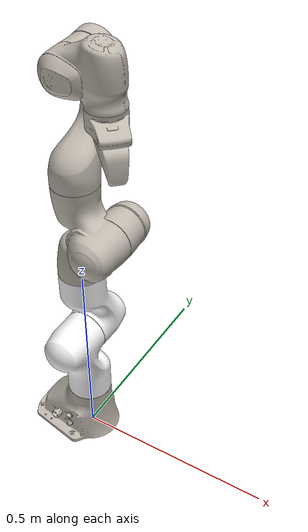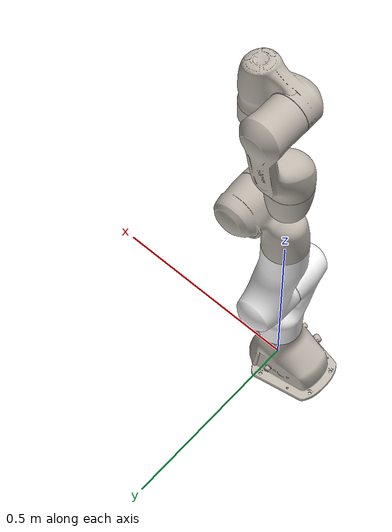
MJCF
<mujoco>
  <compiler angle="radian" meshdir="./mesh" texturedir="./texture" />
  <asset>
    <mesh name="link0" file="link0.obj" />
    <mesh name="link1" file="link1.obj" />
    <mesh name="link2" file="link2.obj" />
    <mesh name="link3" file="link3.obj" />
    <mesh name="link4" file="link4.obj" />
    <mesh name="link5" file="link5.obj" />
    <mesh name="link6" file="link6.obj" />
    <mesh name="link7" file="link7.obj" />
    <mesh name="hand" file="hand.obj" />
    <texture name="panda" file="panda.png" type="2d" />
    <material name="panda" texture="panda" shininess=".4" specular=".4" />
    <material name="panda_white" rgba="1 1 1 1" shininess="0.4" specular="0.4" />
  </asset>
  <default>
    <velocity kv="10" ctrllimited="true" ctrlrange="-3.1415928 3.1415928" forcelimited='true'/>
    <geom solref="0.002 1" solimp="0.95 0.99 0.001" conaffinity="1" friction="1.0 0.1 0.001" contype="1" condim="6" />
  </default>
  <worldbody>
    <body name="panda_link0">
      <site name="base_site" />
      <geom type="mesh" material="panda" mesh="link0" />
      <inertial pos="-4.1018e-02 -1.4e-04 4.9974e-02" mass="6.29769e-01" fullinertia="3.15e-03 3.88e-03 4.285e-03 8.2904e-07 1.5e-04 8.2299e-06" />
      <body name="panda_link1" pos="0 0 0.333">
        <inertial pos="3.875e-03 2.081e-03 -4.762e-02" mass="4.970684" fullinertia="7.0337e-01 7.0661e-01 9.1170e-03 -1.3900e-04 6.7720e-03 1.9169e-02" />
        <joint name="panda_joint1" pos="0 0 0" axis="0 0 1" limited="true" range="-2.8973 2.8973" damping="0.0665" frictionloss="0.2450" />
        <geom type="mesh" material="panda_white" mesh="link1" />
        <body name="panda_link2" pos="0 0 0" quat="0.707107 -0.707107 0 0">
          <inertial pos="-3.141e-03 -2.872e-02 3.495e-03" mass="0.646926" fullinertia="7.9620e-03 2.8110e-02 2.5995e-02 -3.9250e-03 1.0254e-02 7.0400e-04" />
          <joint name="panda_joint2" pos="0 0 0" axis="0 0 1" limited="true" range="-1.7628 1.7628" damping="0.1987" frictionloss="0.1523" />
          <geom type="mesh" material="panda_white" mesh="link2" />
          <body name="panda_link3" pos="0 -0.316 0" quat="0.707107 0.707107 0 0">
            <inertial pos="2.7518e-02 3.9252e-02 -6.6502e-02" mass="3.228604" fullinertia="3.7242e-02 3.6155e-02 1.0830e-02 -4.7610e-03 -1.1396e-02 -1.2805e-02" />
            <joint name="panda_joint3" pos="0 0 0" axis="0 0 1" limited="true" range="-2.8973 2.8973" damping="0.0399" frictionloss="0.1827" />
            <geom type="mesh" material="panda" mesh="link3" />
            <body name="panda_link4" pos="0.0825 0 0" quat="0.707107 0.707107 0 0">
              <inertial pos="-5.317e-02 1.04419e-01 2.7454e-02" mass="3.587895" fullinertia="2.5853e-02 1.9552e-02 2.8323e-02 7.7960e-03 -1.3320e-03 8.6410e-03" />
              <joint name="panda_joint4" pos="0 0 0" axis="0 0 1" limited="true" range="-3.0718 -0.0698" damping="0.2257" frictionloss="0.3591" />
              <geom type="mesh" material="panda" mesh="link4" />
              <body name="panda_link5" pos="-0.0825 0.384 0" quat="0.707107 -0.707107 0 0">
                <inertial pos="1.1953e-02 4.1065e-02 -3.8437e-02" mass="1.225946" fullinertia="3.5549e-02 2.9474e-02 8.6270e-03 -2.1170e-03 -4.0370e-03 2.2900e-04" />
                <joint name="panda_joint5" pos="0 0 0" axis="0 0 1" limited="true" range="-2.8973 2.8973" damping="0.1023" frictionloss="0.2669" />
                <geom type="mesh" material="panda" mesh="link5" />
                <body name="panda_link6" pos="0 0 0" quat="0.707107 0.707107 0 0">
                  <inertial pos="6.0149e-02 -1.4117e-02 -1.0517e-02" mass="1.666555 " fullinertia="1.9640e-03 4.3540e-03 5.4330e-03 1.0900e-04 -1.1580e-03 3.4100e-04" />
                  <joint name="panda_joint6" pos="0 0 0" axis="0 0 1" limited="true" range="-0.0175 3.7525" damping="-0.0132" frictionloss="0.1658" />
                  <geom type="mesh" material="panda" mesh="link6" />
                  <body name="panda_link7" pos="0.088 0 0" quat="0.707107 0.707107 0 0">
                    <inertial pos="1.0517e-02 -4.252e-03 6.1597e-02" mass="7.35522e-01" fullinertia="1.2516e-02 1.0027e-02 4.8150e-03 -4.2800e-04 -1.1960e-03 -7.4100e-04" />
                    <joint name="panda_joint7" pos="0 0 0" axis="0 0 1" limited="true" range="-2.8973 2.8973" damping="0.0638" frictionloss="1.2109" />
                    <geom type="mesh" material="panda" mesh="link7" />
                    <body name="panda_link8" pos="0 0 0.107">
                      <body name="panda_hand" euler="0 0 -0.785398163397">
                        <inertial pos="-1e-02 0 3e-02" mass="7.3e-01" diaginertia="1e-03 2.5e-03 1.7e-03" />
                        <geom type="mesh" material="panda" mesh="hand" />
                        <site name="wrist_site"/>
                      </body>
                    </body>
                  </body>
                </body>
              </body>
            </body>
          </body>
        </body>
      </body>
    </body>
  </worldbody>
  <actuator>
    <velocity forcerange="-87 87" joint="panda_joint1" name="panda_joint1" />
    <velocity forcerange="-87 87" joint="panda_joint2" name="panda_joint2" />
    <velocity forcerange="-87 87" joint="panda_joint3" name="panda_joint3" />
    <velocity forcerange="-87 87" joint="panda_joint4" name="panda_joint4" />
    <velocity forcerange="-12 12" joint="panda_joint5" name="panda_joint5" />
    <velocity forcerange="-12 12" joint="panda_joint6" name="panda_joint6" />
    <velocity forcerange="-12 12" joint="panda_joint7" name="panda_joint7" />
  </actuator>
</mujoco>
